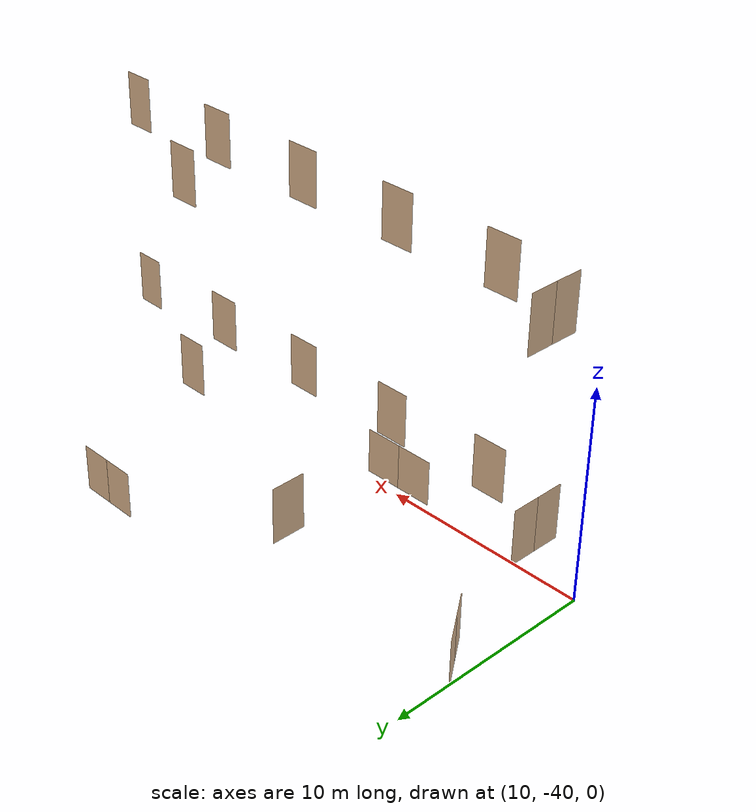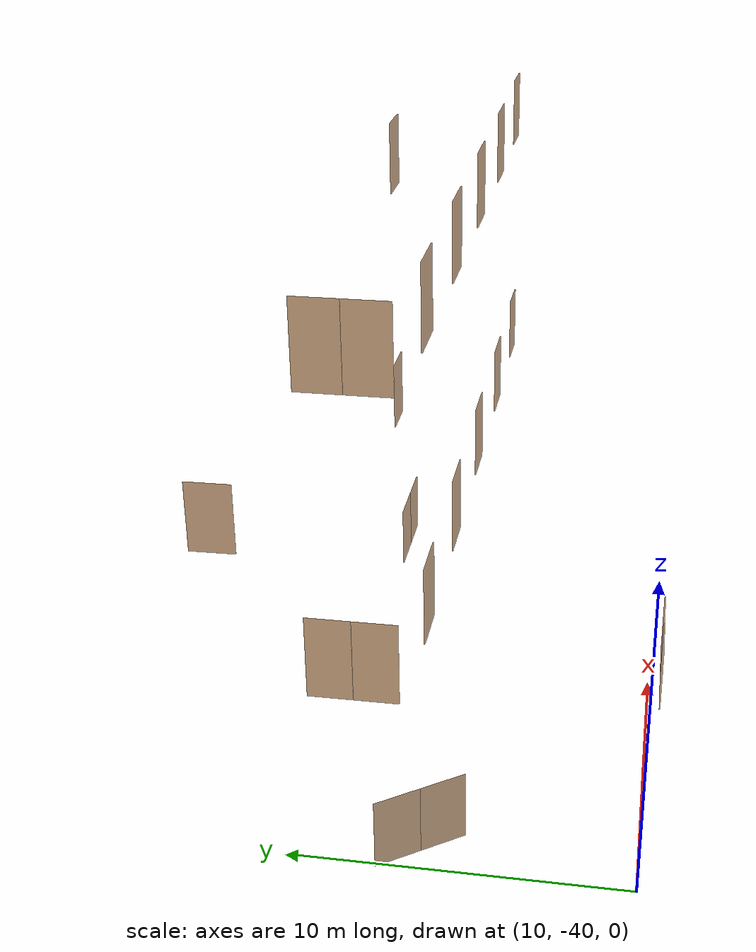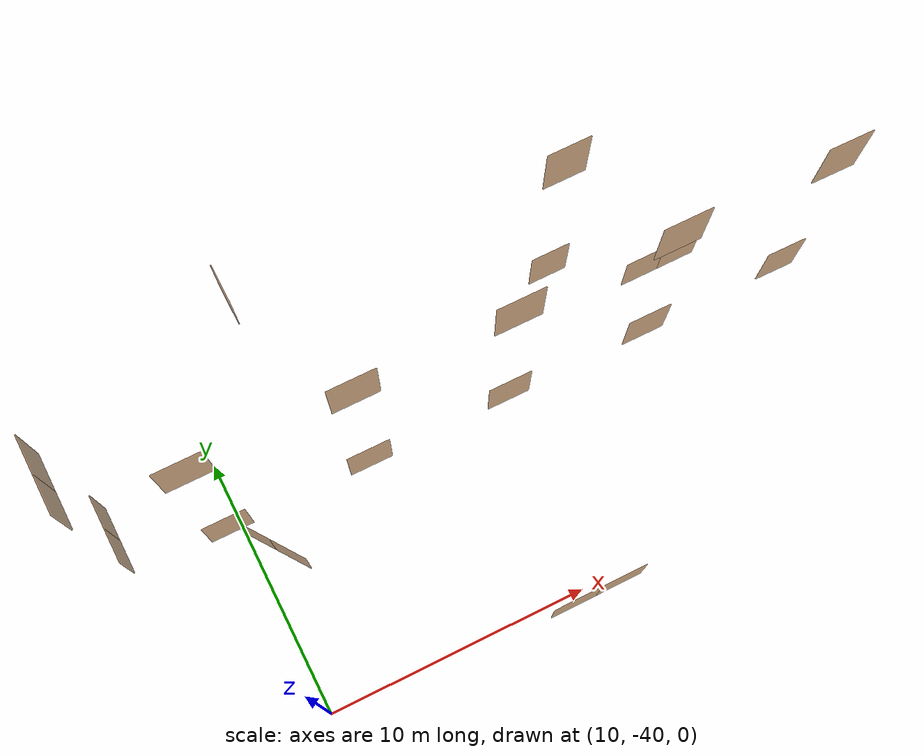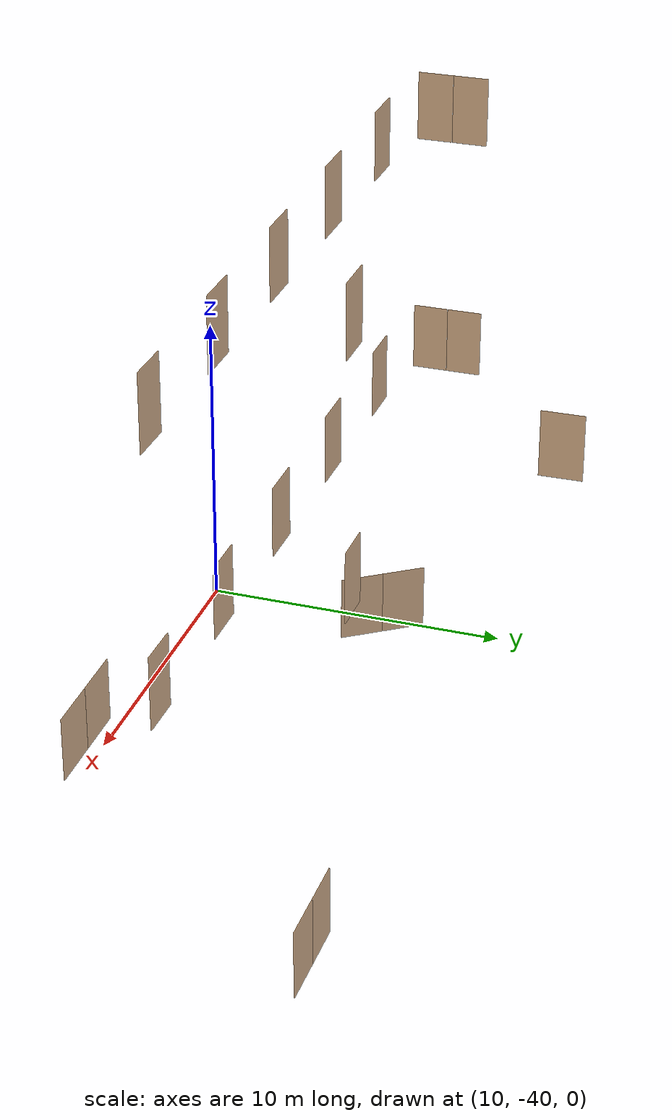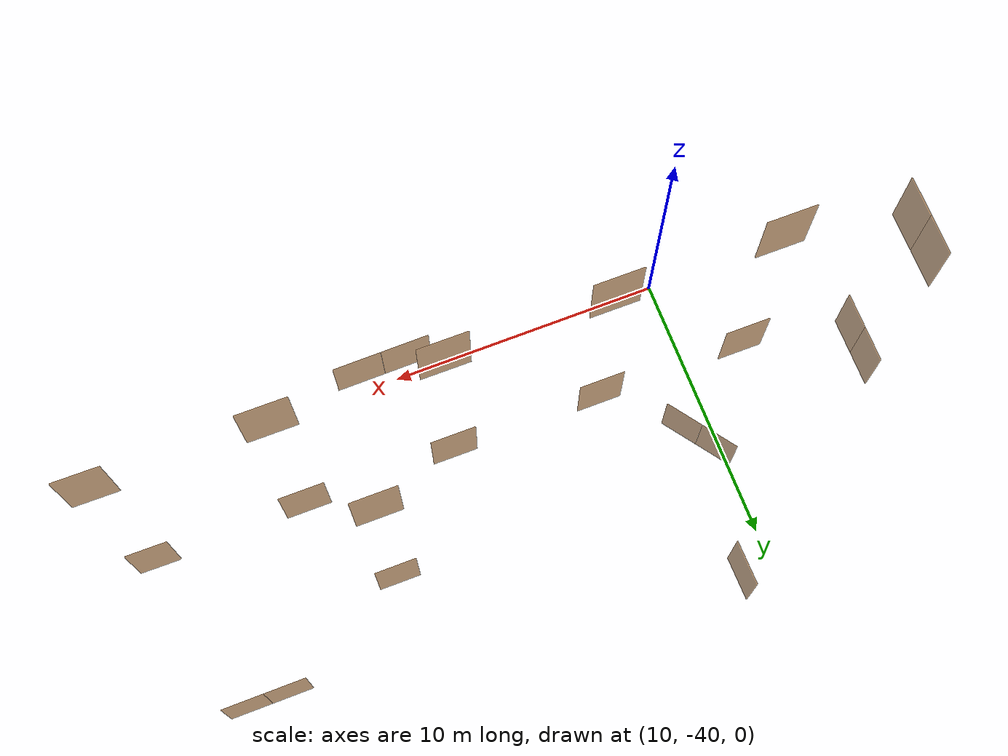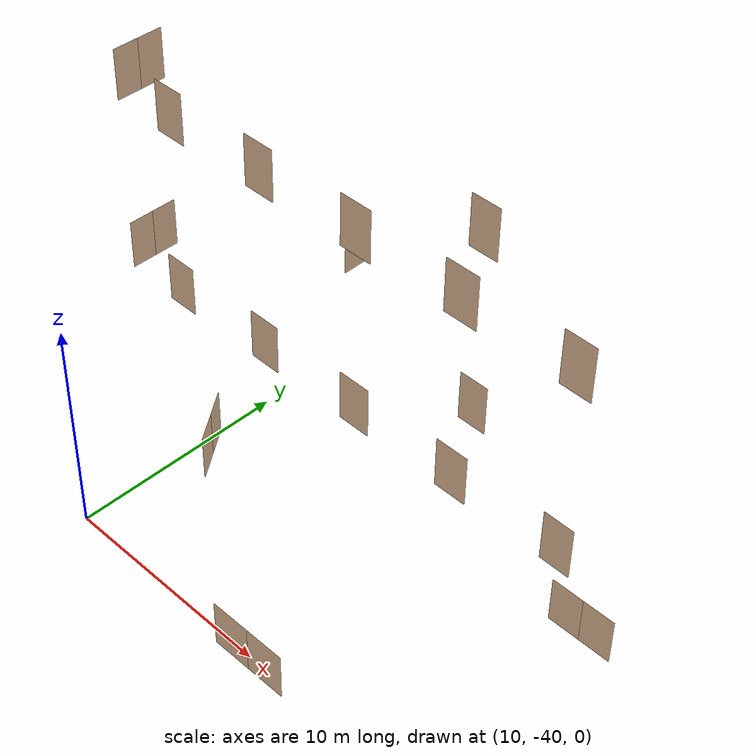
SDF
<sdf version="1.7">
 <world name="world">
  <include><uri>model://sun</uri></include>
  <model name="L1_door1">
   <pose>10.753654762321071 -33.79999264551465 0.0 0 0 2.1904910296829736</pose>
   <link name="right">
    <pose>0.7204413525969184 0 1.11 0 0 0</pose>
    <visual name="right_visual">
     <geometry><box><size>1.4308827051938369 0.03 2.2</size></box></geometry>
     <material><ambient>0.5 0.25 0 0.6</ambient><diffuse>0.5 0.25 0 0.6</diffuse></material>
    </visual>
    <collision name="right_collision">
     <geometry><box><size>1.4308827051938369 0.03 2.2</size></box></geometry>
     <surface><contact><collide_bitmask>0x02</collide_bitmask></contact></surface>
    </collision>
    <inertial>
     <mass>50.0</mass>
     <inertia><ixx>20.17041666666667</ixx><iyy>28.69760548342847</iyy><izz>8.534688816761804</izz></inertia>
    </inertial>
   </link>
   <joint name="right_joint" type="revolute">
    <parent>world</parent>
    <child>right</child>
    <axis><xyz>0 0 1</xyz><limit><lower>0</lower><upper>1.57</upper></limit></axis>
    <pose>0.7204413525969184 0 0 0 0 0</pose>
   </joint>
   <link name="left">
    <pose>-0.7204413525969184 0 1.11 0 0 0</pose>
    <visual name="left_visual">
     <geometry><box><size>1.4308827051938369 0.03 2.2</size></box></geometry>
     <material><ambient>0.5 0.25 0 0.6</ambient><diffuse>0.5 0.25 0 0.6</diffuse></material>
    </visual>
    <collision name="left_collision">
     <geometry><box><size>1.4308827051938369 0.03 2.2</size></box></geometry>
     <surface><contact><collide_bitmask>0x02</collide_bitmask></contact></surface>
    </collision>
    <inertial>
     <mass>50.0</mass>
     <inertia><ixx>20.17041666666667</ixx><iyy>28.69760548342847</iyy><izz>8.534688816761804</izz></inertia>
    </inertial>
   </link>
   <joint name="left_joint" type="revolute">
    <parent>world</parent>
    <child>left</child>
    <axis><xyz>0 0 1</xyz><limit><lower>-1.57</lower><upper>0</upper></limit></axis>
    <pose>-0.7204413525969184 0 0 0 0 0</pose>
   </joint>
  </model>
  <model name="L1_door3">
   <pose>20.334155710474544 -40.40725483879361 0.0 0 0 -3.137402798278724</pose>
   <link name="right">
    <pose>0.9069965354571369 0 1.11 0 0 0</pose>
    <visual name="right_visual">
     <geometry><box><size>1.8039930709142737 0.03 2.2</size></box></geometry>
     <material><ambient>0.5 0.25 0 0.6</ambient><diffuse>0.5 0.25 0 0.6</diffuse></material>
    </visual>
    <collision name="right_collision">
     <geometry><box><size>1.8039930709142737 0.03 2.2</size></box></geometry>
     <surface><contact><collide_bitmask>0x02</collide_bitmask></contact></surface>
    </collision>
    <inertial>
     <mass>50.0</mass>
     <inertia><ixx>20.17041666666667</ixx><iyy>33.726629166277974</iyy><izz>13.563712499611302</izz></inertia>
    </inertial>
   </link>
   <joint name="right_joint" type="prismatic">
    <parent>world</parent>
    <child>right</child>
    <axis>
     <xyz>1 0 0</xyz>
     <limit><lower>0.0</lower><upper>1.8139930709142738</upper><effort>500.0</effort></limit>
    </axis>
   </joint>
   <link name="left">
    <pose>-0.9069965354571369 0 1.11 0 0 0</pose>
    <visual name="left_visual">
     <geometry><box><size>1.8039930709142737 0.03 2.2</size></box></geometry>
     <material><ambient>0.5 0.25 0 0.6</ambient><diffuse>0.5 0.25 0 0.6</diffuse></material>
    </visual>
    <collision name="left_collision">
     <geometry><box><size>1.8039930709142737 0.03 2.2</size></box></geometry>
     <surface><contact><collide_bitmask>0x02</collide_bitmask></contact></surface>
    </collision>
    <inertial>
     <mass>50.0</mass>
     <inertia><ixx>20.17041666666667</ixx><iyy>33.726629166277974</iyy><izz>13.563712499611302</izz></inertia>
    </inertial>
   </link>
   <joint name="left_joint" type="prismatic">
    <parent>world</parent>
    <child>left</child>
    <axis>
     <xyz>1 0 0</xyz>
     <limit><lower>-1.8139930709142738</lower><upper>0.0</upper><effort>500.0</effort></limit>
    </axis>
   </joint>
  </model>
  <model name="L1_door5">
   <pose>28.079493196697264 -30.43738230505557 0.0 0 0 -0.0023958500301941633</pose>
   <link name="right">
    <pose>0.7494993011996198 0 1.11 0 0 0</pose>
    <visual name="right_visual">
     <geometry><box><size>1.4889986023992396 0.03 2.2</size></box></geometry>
     <material><ambient>0.5 0.25 0 0.6</ambient><diffuse>0.5 0.25 0 0.6</diffuse></material>
    </visual>
    <collision name="right_collision">
     <geometry><box><size>1.4889986023992396 0.03 2.2</size></box></geometry>
     <surface><contact><collide_bitmask>0x02</collide_bitmask></contact></surface>
    </collision>
    <inertial>
     <mass>50.0</mass>
     <inertia><ixx>20.17041666666667</ixx><iyy>29.404653491445373</iyy><izz>9.241736824778705</izz></inertia>
    </inertial>
   </link>
   <joint name="right_joint" type="prismatic">
    <parent>world</parent>
    <child>right</child>
    <axis>
     <xyz>1 0 0</xyz>
     <limit><lower>0.0</lower><upper>1.4989986023992397</upper><effort>500.0</effort></limit>
    </axis>
   </joint>
   <link name="left">
    <pose>-0.7494993011996198 0 1.11 0 0 0</pose>
    <visual name="left_visual">
     <geometry><box><size>1.4889986023992396 0.03 2.2</size></box></geometry>
     <material><ambient>0.5 0.25 0 0.6</ambient><diffuse>0.5 0.25 0 0.6</diffuse></material>
    </visual>
    <collision name="left_collision">
     <geometry><box><size>1.4889986023992396 0.03 2.2</size></box></geometry>
     <surface><contact><collide_bitmask>0x02</collide_bitmask></contact></surface>
    </collision>
    <inertial>
     <mass>50.0</mass>
     <inertia><ixx>20.17041666666667</ixx><iyy>29.404653491445373</iyy><izz>9.241736824778705</izz></inertia>
    </inertial>
   </link>
   <joint name="left_joint" type="prismatic">
    <parent>world</parent>
    <child>left</child>
    <axis>
     <xyz>1 0 0</xyz>
     <limit><lower>-1.4989986023992397</lower><upper>0.0</upper><effort>500.0</effort></limit>
    </axis>
   </joint>
  </model>
  <model name="L2_door2">
   <pose>6.76857286388343 -32.90682600516501 8.0 0 0 1.571612558028263</pose>
   <link name="right">
    <pose>0.5675078680191911 0 1.11 0 0 0</pose>
    <visual name="right_visual">
     <geometry><box><size>1.1250157360383821 0.03 2.2</size></box></geometry>
     <material><ambient>0.5 0.25 0 0.6</ambient><diffuse>0.5 0.25 0 0.6</diffuse></material>
    </visual>
    <collision name="right_collision">
     <geometry><box><size>1.1250157360383821 0.03 2.2</size></box></geometry>
     <surface><contact><collide_bitmask>0x02</collide_bitmask></contact></surface>
    </collision>
    <inertial>
     <mass>50.0</mass>
     <inertia><ixx>20.17041666666667</ixx><iyy>25.44025169305827</iyy><izz>5.277335026391595</izz></inertia>
    </inertial>
   </link>
   <joint name="right_joint" type="revolute">
    <parent>world</parent>
    <child>right</child>
    <axis><xyz>0 0 -1</xyz><limit><lower>0</lower><upper>1.57</upper></limit></axis>
    <pose>0.5675078680191911 0 0 0 0 0</pose>
   </joint>
   <link name="left">
    <pose>-0.5675078680191911 0 1.11 0 0 0</pose>
    <visual name="left_visual">
     <geometry><box><size>1.1250157360383821 0.03 2.2</size></box></geometry>
     <material><ambient>0.5 0.25 0 0.6</ambient><diffuse>0.5 0.25 0 0.6</diffuse></material>
    </visual>
    <collision name="left_collision">
     <geometry><box><size>1.1250157360383821 0.03 2.2</size></box></geometry>
     <surface><contact><collide_bitmask>0x02</collide_bitmask></contact></surface>
    </collision>
    <inertial>
     <mass>50.0</mass>
     <inertia><ixx>20.17041666666667</ixx><iyy>25.44025169305827</iyy><izz>5.277335026391595</izz></inertia>
    </inertial>
   </link>
   <joint name="left_joint" type="revolute">
    <parent>world</parent>
    <child>left</child>
    <axis><xyz>0 0 -1</xyz><limit><lower>-1.57</lower><upper>0</upper></limit></axis>
    <pose>-0.5675078680191911 0 0 0 0 0</pose>
   </joint>
  </model>
  <model name="L2_door3">
   <pose>10.044220258 -34.21478433126707 8.0 0 0 3.1365461417546308</pose>
   <link name="right">
    <pose>0 0 1.11 0 0 0</pose>
    <visual name="right_visual">
     <geometry><box><size>1.4278667928054123 0.03 2.2</size></box></geometry>
     <material><ambient>0.5 0.25 0 0.6</ambient><diffuse>0.5 0.25 0 0.6</diffuse></material>
    </visual>
    <collision name="right_collision">
     <geometry><box><size>1.4278667928054123 0.03 2.2</size></box></geometry>
     <surface><contact><collide_bitmask>0x02</collide_bitmask></contact></surface>
    </collision>
    <inertial>
     <mass>50.0</mass>
     <inertia><ixx>20.17041666666667</ixx><iyy>28.661681574985064</iyy><izz>8.498764908318392</izz></inertia>
    </inertial>
   </link>
   <joint name="right_joint" type="revolute">
    <parent>world</parent>
    <child>right</child>
    <axis><xyz>0 0 -1</xyz><limit><lower>0</lower><upper>1.57</upper></limit></axis>
    <pose>0.7189333964027061 0 0 0 0 0</pose>
   </joint>
  </model>
  <model name="L2_door4">
   <pose>19.62055855578882 -34.21478433126707 8.0 0 0 3.1365461417546308</pose>
   <link name="right">
    <pose>0 0 1.11 0 0 0</pose>
    <visual name="right_visual">
     <geometry><box><size>1.4278667928054123 0.03 2.2</size></box></geometry>
     <material><ambient>0.5 0.25 0 0.6</ambient><diffuse>0.5 0.25 0 0.6</diffuse></material>
    </visual>
    <collision name="right_collision">
     <geometry><box><size>1.4278667928054123 0.03 2.2</size></box></geometry>
     <surface><contact><collide_bitmask>0x02</collide_bitmask></contact></surface>
    </collision>
    <inertial>
     <mass>50.0</mass>
     <inertia><ixx>20.17041666666667</ixx><iyy>28.661681574985064</iyy><izz>8.498764908318392</izz></inertia>
    </inertial>
   </link>
   <joint name="right_joint" type="revolute">
    <parent>world</parent>
    <child>right</child>
    <axis><xyz>0 0 -1</xyz><limit><lower>0</lower><upper>1.57</upper></limit></axis>
    <pose>0.7189333964027061 0 0 0 0 0</pose>
   </joint>
  </model>
  <model name="L2_door5">
   <pose>14.832389407 -34.21478433126707 8.0 0 0 3.1365461417546308</pose>
   <link name="right">
    <pose>0 0 1.11 0 0 0</pose>
    <visual name="right_visual">
     <geometry><box><size>1.4278667928054123 0.03 2.2</size></box></geometry>
     <material><ambient>0.5 0.25 0 0.6</ambient><diffuse>0.5 0.25 0 0.6</diffuse></material>
    </visual>
    <collision name="right_collision">
     <geometry><box><size>1.4278667928054123 0.03 2.2</size></box></geometry>
     <surface><contact><collide_bitmask>0x02</collide_bitmask></contact></surface>
    </collision>
    <inertial>
     <mass>50.0</mass>
     <inertia><ixx>20.17041666666667</ixx><iyy>28.661681574985064</iyy><izz>8.498764908318392</izz></inertia>
    </inertial>
   </link>
   <joint name="right_joint" type="revolute">
    <parent>world</parent>
    <child>right</child>
    <axis><xyz>0 0 -1</xyz><limit><lower>0</lower><upper>1.57</upper></limit></axis>
    <pose>0.7189333964027061 0 0 0 0 0</pose>
   </joint>
  </model>
  <model name="L2_door6">
   <pose>24.408727706 -34.21478433126707 8.0 0 0 3.1365461417546308</pose>
   <link name="right">
    <pose>0 0 1.11 0 0 0</pose>
    <visual name="right_visual">
     <geometry><box><size>1.4278667928054123 0.03 2.2</size></box></geometry>
     <material><ambient>0.5 0.25 0 0.6</ambient><diffuse>0.5 0.25 0 0.6</diffuse></material>
    </visual>
    <collision name="right_collision">
     <geometry><box><size>1.4278667928054123 0.03 2.2</size></box></geometry>
     <surface><contact><collide_bitmask>0x02</collide_bitmask></contact></surface>
    </collision>
    <inertial>
     <mass>50.0</mass>
     <inertia><ixx>20.17041666666667</ixx><iyy>28.661681574985064</iyy><izz>8.498764908318392</izz></inertia>
    </inertial>
   </link>
   <joint name="right_joint" type="revolute">
    <parent>world</parent>
    <child>right</child>
    <axis><xyz>0 0 -1</xyz><limit><lower>0</lower><upper>1.57</upper></limit></axis>
    <pose>0.7189333964027061 0 0 0 0 0</pose>
   </joint>
  </model>
  <model name="L2_door7">
   <pose>13.018848337594756 -27.49809116 8.0 0 0 1.5874688733681936</pose>
   <link name="right">
    <pose>0 0 1.11 0 0 0</pose>
    <visual name="right_visual">
     <geometry><box><size>1.382945881897145 0.03 2.2</size></box></geometry>
     <material><ambient>0.5 0.25 0 0.6</ambient><diffuse>0.5 0.25 0 0.6</diffuse></material>
    </visual>
    <collision name="right_collision">
     <geometry><box><size>1.382945881897145 0.03 2.2</size></box></geometry>
     <surface><contact><collide_bitmask>0x02</collide_bitmask></contact></surface>
    </collision>
    <inertial>
     <mass>50.0</mass>
     <inertia><ixx>20.17041666666667</ixx><iyy>28.13558046773447</iyy><izz>7.9726638010677995</izz></inertia>
    </inertial>
   </link>
   <joint name="right_joint" type="revolute">
    <parent>world</parent>
    <child>right</child>
    <axis><xyz>0 0 -1</xyz><limit><lower>0</lower><upper>1.57</upper></limit></axis>
    <pose>0.6964729409485725 0 0 0 0 0</pose>
   </joint>
  </model>
  <model name="L2_door14">
   <pose>22.582882547846204 -31.092638612981972 8.0 0 0 3.137779488569298</pose>
   <link name="right">
    <pose>0 0 1.11 0 0 0</pose>
    <visual name="right_visual">
     <geometry><box><size>1.2889329745237348 0.03 2.2</size></box></geometry>
     <material><ambient>0.5 0.25 0 0.6</ambient><diffuse>0.5 0.25 0 0.6</diffuse></material>
    </visual>
    <collision name="right_collision">
     <geometry><box><size>1.2889329745237348 0.03 2.2</size></box></geometry>
     <surface><contact><collide_bitmask>0x02</collide_bitmask></contact></surface>
    </collision>
    <inertial>
     <mass>50.0</mass>
     <inertia><ixx>20.17041666666667</ixx><iyy>27.088950886727517</iyy><izz>6.926034220060845</izz></inertia>
    </inertial>
   </link>
   <joint name="right_joint" type="revolute">
    <parent>world</parent>
    <child>right</child>
    <axis><xyz>0 0 1</xyz><limit><lower>0</lower><upper>1.57</upper></limit></axis>
    <pose>0.6494664872618674 0 0 0 0 0</pose>
   </joint>
  </model>
  <model name="L2_door15">
   <pose>29.19689685453295 -34.1844883615378 8.0 0 0 3.1287318603676484</pose>
   <link name="right">
    <pose>0 0 1.11 0 0 0</pose>
    <visual name="right_visual">
     <geometry><box><size>1.2884785147293154 0.03 2.2</size></box></geometry>
     <material><ambient>0.5 0.25 0 0.6</ambient><diffuse>0.5 0.25 0 0.6</diffuse></material>
    </visual>
    <collision name="right_collision">
     <geometry><box><size>1.2884785147293154 0.03 2.2</size></box></geometry>
     <surface><contact><collide_bitmask>0x02</collide_bitmask></contact></surface>
    </collision>
    <inertial>
     <mass>50.0</mass>
     <inertia><ixx>20.17041666666667</ixx><iyy>27.0840703454961</iyy><izz>6.921153678829428</izz></inertia>
    </inertial>
   </link>
   <joint name="right_joint" type="revolute">
    <parent>world</parent>
    <child>right</child>
    <axis><xyz>0 0 -1</xyz><limit><lower>0</lower><upper>1.57</upper></limit></axis>
    <pose>0.6492392573646577 0 0 0 0 0</pose>
   </joint>
  </model>
  <model name="L3_door2">
   <pose>6.76857286388343 -32.90682600516501 16.0 0 0 1.571612558028263</pose>
   <link name="right">
    <pose>0.5675078680191911 0 1.11 0 0 0</pose>
    <visual name="right_visual">
     <geometry><box><size>1.1250157360383821 0.03 2.2</size></box></geometry>
     <material><ambient>0.5 0.25 0 0.6</ambient><diffuse>0.5 0.25 0 0.6</diffuse></material>
    </visual>
    <collision name="right_collision">
     <geometry><box><size>1.1250157360383821 0.03 2.2</size></box></geometry>
     <surface><contact><collide_bitmask>0x02</collide_bitmask></contact></surface>
    </collision>
    <inertial>
     <mass>50.0</mass>
     <inertia><ixx>20.17041666666667</ixx><iyy>25.44025169305827</iyy><izz>5.277335026391595</izz></inertia>
    </inertial>
   </link>
   <joint name="right_joint" type="revolute">
    <parent>world</parent>
    <child>right</child>
    <axis><xyz>0 0 -1</xyz><limit><lower>0</lower><upper>1.57</upper></limit></axis>
    <pose>0.5675078680191911 0 0 0 0 0</pose>
   </joint>
   <link name="left">
    <pose>-0.5675078680191911 0 1.11 0 0 0</pose>
    <visual name="left_visual">
     <geometry><box><size>1.1250157360383821 0.03 2.2</size></box></geometry>
     <material><ambient>0.5 0.25 0 0.6</ambient><diffuse>0.5 0.25 0 0.6</diffuse></material>
    </visual>
    <collision name="left_collision">
     <geometry><box><size>1.1250157360383821 0.03 2.2</size></box></geometry>
     <surface><contact><collide_bitmask>0x02</collide_bitmask></contact></surface>
    </collision>
    <inertial>
     <mass>50.0</mass>
     <inertia><ixx>20.17041666666667</ixx><iyy>25.44025169305827</iyy><izz>5.277335026391595</izz></inertia>
    </inertial>
   </link>
   <joint name="left_joint" type="revolute">
    <parent>world</parent>
    <child>left</child>
    <axis><xyz>0 0 -1</xyz><limit><lower>-1.57</lower><upper>0</upper></limit></axis>
    <pose>-0.5675078680191911 0 0 0 0 0</pose>
   </joint>
  </model>
  <model name="L3_door3">
   <pose>10.044220258 -34.21478433126707 16.0 0 0 3.1365461417546308</pose>
   <link name="right">
    <pose>0 0 1.11 0 0 0</pose>
    <visual name="right_visual">
     <geometry><box><size>1.4278667928054123 0.03 2.2</size></box></geometry>
     <material><ambient>0.5 0.25 0 0.6</ambient><diffuse>0.5 0.25 0 0.6</diffuse></material>
    </visual>
    <collision name="right_collision">
     <geometry><box><size>1.4278667928054123 0.03 2.2</size></box></geometry>
     <surface><contact><collide_bitmask>0x02</collide_bitmask></contact></surface>
    </collision>
    <inertial>
     <mass>50.0</mass>
     <inertia><ixx>20.17041666666667</ixx><iyy>28.661681574985064</iyy><izz>8.498764908318392</izz></inertia>
    </inertial>
   </link>
   <joint name="right_joint" type="revolute">
    <parent>world</parent>
    <child>right</child>
    <axis><xyz>0 0 -1</xyz><limit><lower>0</lower><upper>1.57</upper></limit></axis>
    <pose>0.7189333964027061 0 0 0 0 0</pose>
   </joint>
  </model>
  <model name="L3_door4">
   <pose>19.62055855578882 -34.21478433126707 16.0 0 0 3.1365461417546308</pose>
   <link name="right">
    <pose>0 0 1.11 0 0 0</pose>
    <visual name="right_visual">
     <geometry><box><size>1.4278667928054123 0.03 2.2</size></box></geometry>
     <material><ambient>0.5 0.25 0 0.6</ambient><diffuse>0.5 0.25 0 0.6</diffuse></material>
    </visual>
    <collision name="right_collision">
     <geometry><box><size>1.4278667928054123 0.03 2.2</size></box></geometry>
     <surface><contact><collide_bitmask>0x02</collide_bitmask></contact></surface>
    </collision>
    <inertial>
     <mass>50.0</mass>
     <inertia><ixx>20.17041666666667</ixx><iyy>28.661681574985064</iyy><izz>8.498764908318392</izz></inertia>
    </inertial>
   </link>
   <joint name="right_joint" type="revolute">
    <parent>world</parent>
    <child>right</child>
    <axis><xyz>0 0 -1</xyz><limit><lower>0</lower><upper>1.57</upper></limit></axis>
    <pose>0.7189333964027061 0 0 0 0 0</pose>
   </joint>
  </model>
  <model name="L3_door5">
   <pose>14.832389407 -34.21478433126707 16.0 0 0 3.1365461417546308</pose>
   <link name="right">
    <pose>0 0 1.11 0 0 0</pose>
    <visual name="right_visual">
     <geometry><box><size>1.4278667928054123 0.03 2.2</size></box></geometry>
     <material><ambient>0.5 0.25 0 0.6</ambient><diffuse>0.5 0.25 0 0.6</diffuse></material>
    </visual>
    <collision name="right_collision">
     <geometry><box><size>1.4278667928054123 0.03 2.2</size></box></geometry>
     <surface><contact><collide_bitmask>0x02</collide_bitmask></contact></surface>
    </collision>
    <inertial>
     <mass>50.0</mass>
     <inertia><ixx>20.17041666666667</ixx><iyy>28.661681574985064</iyy><izz>8.498764908318392</izz></inertia>
    </inertial>
   </link>
   <joint name="right_joint" type="revolute">
    <parent>world</parent>
    <child>right</child>
    <axis><xyz>0 0 -1</xyz><limit><lower>0</lower><upper>1.57</upper></limit></axis>
    <pose>0.7189333964027061 0 0 0 0 0</pose>
   </joint>
  </model>
  <model name="L3_door6">
   <pose>24.408727706 -34.21478433126707 16.0 0 0 3.1365461417546308</pose>
   <link name="right">
    <pose>0 0 1.11 0 0 0</pose>
    <visual name="right_visual">
     <geometry><box><size>1.4278667928054123 0.03 2.2</size></box></geometry>
     <material><ambient>0.5 0.25 0 0.6</ambient><diffuse>0.5 0.25 0 0.6</diffuse></material>
    </visual>
    <collision name="right_collision">
     <geometry><box><size>1.4278667928054123 0.03 2.2</size></box></geometry>
     <surface><contact><collide_bitmask>0x02</collide_bitmask></contact></surface>
    </collision>
    <inertial>
     <mass>50.0</mass>
     <inertia><ixx>20.17041666666667</ixx><iyy>28.661681574985064</iyy><izz>8.498764908318392</izz></inertia>
    </inertial>
   </link>
   <joint name="right_joint" type="revolute">
    <parent>world</parent>
    <child>right</child>
    <axis><xyz>0 0 -1</xyz><limit><lower>0</lower><upper>1.57</upper></limit></axis>
    <pose>0.7189333964027061 0 0 0 0 0</pose>
   </joint>
  </model>
  <model name="L3_door14">
   <pose>22.582882547846204 -31.092638612981972 16.0 0 0 3.137779488569298</pose>
   <link name="right">
    <pose>0 0 1.11 0 0 0</pose>
    <visual name="right_visual">
     <geometry><box><size>1.2889329745237348 0.03 2.2</size></box></geometry>
     <material><ambient>0.5 0.25 0 0.6</ambient><diffuse>0.5 0.25 0 0.6</diffuse></material>
    </visual>
    <collision name="right_collision">
     <geometry><box><size>1.2889329745237348 0.03 2.2</size></box></geometry>
     <surface><contact><collide_bitmask>0x02</collide_bitmask></contact></surface>
    </collision>
    <inertial>
     <mass>50.0</mass>
     <inertia><ixx>20.17041666666667</ixx><iyy>27.088950886727517</iyy><izz>6.926034220060845</izz></inertia>
    </inertial>
   </link>
   <joint name="right_joint" type="revolute">
    <parent>world</parent>
    <child>right</child>
    <axis><xyz>0 0 1</xyz><limit><lower>0</lower><upper>1.57</upper></limit></axis>
    <pose>0.6494664872618674 0 0 0 0 0</pose>
   </joint>
  </model>
  <model name="L3_door15">
   <pose>29.19689685453295 -34.1844883615378 16.0 0 0 3.1287318603676484</pose>
   <link name="right">
    <pose>0 0 1.11 0 0 0</pose>
    <visual name="right_visual">
     <geometry><box><size>1.2884785147293154 0.03 2.2</size></box></geometry>
     <material><ambient>0.5 0.25 0 0.6</ambient><diffuse>0.5 0.25 0 0.6</diffuse></material>
    </visual>
    <collision name="right_collision">
     <geometry><box><size>1.2884785147293154 0.03 2.2</size></box></geometry>
     <surface><contact><collide_bitmask>0x02</collide_bitmask></contact></surface>
    </collision>
    <inertial>
     <mass>50.0</mass>
     <inertia><ixx>20.17041666666667</ixx><iyy>27.0840703454961</iyy><izz>6.921153678829428</izz></inertia>
    </inertial>
   </link>
   <joint name="right_joint" type="revolute">
    <parent>world</parent>
    <child>right</child>
    <axis><xyz>0 0 -1</xyz><limit><lower>0</lower><upper>1.57</upper></limit></axis>
    <pose>0.6492392573646577 0 0 0 0 0</pose>
   </joint>
  </model>
 </world>
</sdf>
